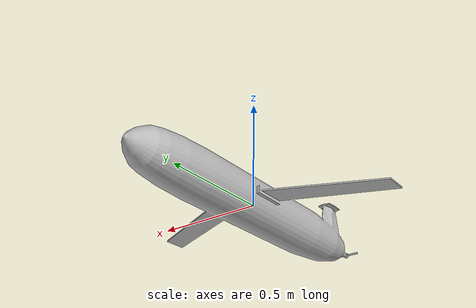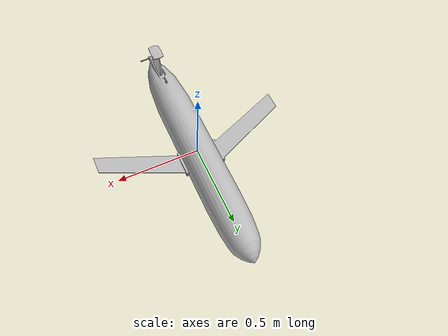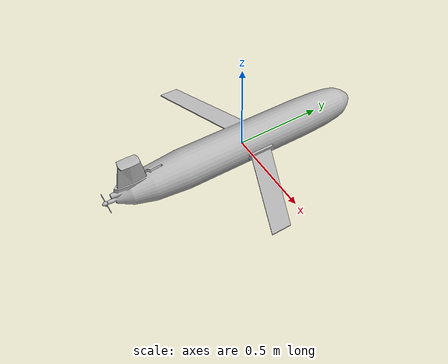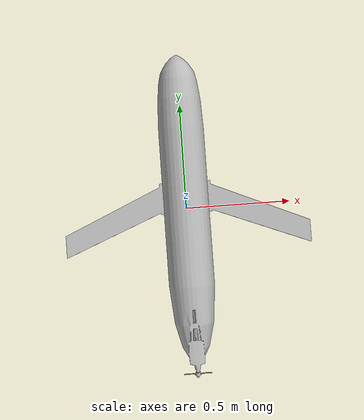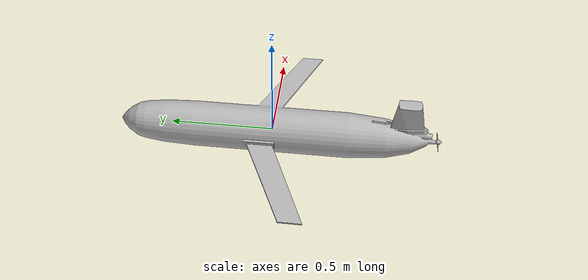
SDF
<?xml version="1.0"?>
<sdf version="1.7">
  <model name="glider_nautilus">

    <static>false</static>
    <link name="base_link">
      <inertial>
        <pose>0 0 -3 0 0 0</pose>
        <mass>44.25</mass>
        <inertia>
          <ixx>13.193856</ixx>
          <ixy>0</ixy>
          <ixz>0</ixz>
          <iyy>0.418962</iyy>
          <iyz>0</iyz>
          <izz>13.193856</izz>
        </inertia>
      </inertial>

      <visual name="base_link_visual">
        <pose>0 0 0 0 0 0</pose>
        <geometry>
          <mesh>
            <scale>0.5 0.5 0.5</scale>
            <uri>model://meshes/glider_nautilus/Nautilus-Glider.dae</uri>
          </mesh>
        </geometry>
      </visual>

      <collision name="base_link_collision">
        <pose>0 0 0 0 0 0</pose>
        <geometry>
          <box>
            <size>0.266 1 0.266</size>
          </box>
        </geometry>
      </collision>
    </link>

    <link name="propeller_link">
      <visual name="propeller_link_visual">
        <pose>0 0 0 0 0 0</pose>
        <geometry>
          <mesh>
            <scale>0.5 0.5 0.5</scale>
            <uri>model://meshes/glider_nautilus/Nautilus-Glider-Propeller.dae</uri>
          </mesh>
        </geometry>
      </visual>
      <inertial>
        <pose>0 0 0 0 0 0</pose>
        <inertia>
          <ixx>0.1</ixx>
          <ixy>0</ixy>
          <ixz>0</ixz>
          <iyy>0.1</iyy>
          <iyz>0</iyz>
          <izz>0.1</izz>
        </inertia>
        <mass>0.5</mass>
      </inertial>
    </link>

    <joint name="propeller_joint" type="revolute">
      <pose>0 0 0 0 0 0</pose>
      <parent>base_link</parent>
      <child>propeller_link</child>
      <axis>
        <xyz>0 1 0</xyz>
      </axis>
    </joint>

    <link name="bladder_link">
      <pose>0 0 0 0 0 0</pose>
    </link>

    <joint name="bladder_joint" type="revolute">
      <pose>0 0 0 0 0 0</pose>
      <parent>base_link</parent>
      <child>bladder_link</child>
      <axis>
        <xyz>0 0 1</xyz>
      </axis>
    </joint>

    <plugin
      filename="gz-sim-thruster-system"
      name="gz::sim::systems::Thruster">
      <namespace>glider_nautilus</namespace>
      <joint_name>bladder_joint</joint_name>
      <thrust_coefficient>0.004422</thrust_coefficient>
      <fluid_density>1025</fluid_density>
      <propeller_diameter>0.2</propeller_diameter>
    </plugin>

    <link name="weight_link">
      <inertial>
        <pose>0 0 0 0 0 0</pose>
        <mass>25</mass>
        <inertia>
          <ixx>0.2</ixx>
          <iyy>0.2</iyy>
          <izz>0.2</izz>
        </inertia>
      </inertial>
    </link>

    <joint name="weight_joint" type="prismatic">
      <parent>base_link</parent>
      <child>weight_link</child>
      <pose>0 0 0 0 0 0</pose>
      <axis>
        <xyz>0 1 0</xyz>
        <limit>
          <lower>-0.5</lower> <!-- Minimum position (in meters) -->
          <upper>0.5</upper>  <!-- Maximum position (in meters) -->
          <effort>10.0</effort> <!-- Maximum effort (optional, in newton-meters) -->
          <velocity>0.5</velocity> <!-- Maximum velocity (optional, in meters/second) -->
        </limit>
      </axis>
    </joint>

    <plugin
      filename="gz-sim-joint-controller-system"
      name="gz::sim::systems::JointController">
      <joint_name>weight_joint</joint_name>
    </plugin>

    <link name="imu_link">
      <inertial>
        <pose>0 0 0 0 0 0</pose>
        <mass>0.015</mass>
        <inertia>
          <ixx>0.00001</ixx>
          <ixy>0.0</ixy>
          <ixz>0.0</ixz>
          <iyy>0.00001</iyy>
          <iyz>0.0</iyz>
          <izz>0.00001</izz>
        </inertia>
      </inertial>
      <sensor name="imu_sensor" type="imu">
        <always_on>true</always_on>
        <update_rate>50.0</update_rate>
        <topic>/model/glider_nautilus/imu</topic>
      </sensor>
    </link>

    <joint name="imu_joint" type="fixed">
      <pose>0 0 0 0 0 0</pose>
      <parent>base_link</parent>
      <child>imu_link</child>
    </joint>

    <link name='battery_link'>
      <inertial>
        <pose>0 0 0 0 0 0</pose>
        <mass>2.9</mass>
        <inertia>
          <ixx>1e-05</ixx>
          <ixy>0</ixy>
          <ixz>0</ixz>
          <iyy>1e-05</iyy>
          <iyz>0</iyz>
          <izz>1e-05</izz>
        </inertia>
      </inertial>
      <battery name='battery'>
        <voltage>4.2</voltage>
      </battery>
    </link>

    <joint name='battery_joint' type='prismatic'>
      <pose>0 -0.318 0.044 0 0 0</pose> <!--CHECK AXIS DEFINITION-->
      <parent>base_link</parent>
      <child>battery_link</child>
      <axis>
        <xyz>0 1 0</xyz>
        <limit>
          <lower>-0.393</lower> <!-- Minimum position (in meters) -->
          <upper>-0.243</upper>  <!-- Maximum position (in meters) -->
          <effort>10.0</effort> <!-- Maximum effort (optional, in newton-meters) -->
          <velocity>0.5</velocity> <!-- Maximum velocity (optional, in meters/second) -->
        </limit>
      </axis>
    </joint>

<link name='acu_roll_link'>
      <inertial>
        <pose>0 0 0 0 0 0</pose>
        <mass>3.5</mass>
        <inertia>
          <ixx>1e-05</ixx>
          <ixy>0</ixy>
          <ixz>0</ixz>
          <iyy>1e-05</iyy>
          <iyz>0</iyz>
          <izz>1e-05</izz>
        </inertia>
      </inertial>
      <battery name='battery_acu_roll'>
        <voltage>4.2</voltage>
      </battery>
    </link>

    <joint name='acu_roll_joint' type='revolute'>
      <pose>0 -0.4 -0.07 0 0 0</pose> <!--CHECK AXIS DEFINITION-->
      <parent>base_link</parent>
      <child>acu_roll_link</child>
      <axis>
        <xyz>0 1 0</xyz>
        <limit>
          <lower>-0.5236</lower> <!-- Minimum position (in degrees) -->
          <upper>0.5236</upper>  <!-- Maximum position (in degrees) -->
          <effort>10.0</effort> <!-- Maximum effort (optional, in newton-meters) -->
          <velocity>0.5</velocity> <!-- Maximum velocity (optional, in meters/second) -->
        </limit>
      </axis>
    </joint>

    <plugin
      filename="gz-sim-joint-controller-system"
      name="gz::sim::systems::JointController">
      <joint_name>battery_joint</joint_name>
    </plugin>

    <plugin
      filename="gz-sim-joint-controller-system"
      name="gz::sim::systems::JointController">
      <joint_name>acu_roll_joint</joint_name>
    </plugin>

    <plugin
      filename="gz-sim-linearbatteryplugin-system"
      name="gz::sim::systems::LinearBatteryPlugin">
      <battery_name>battery</battery_name>
      <voltage>4.2</voltage>
      <open_circuit_voltage_constant_coef>3.7</open_circuit_voltage_constant_coef>
      <open_circuit_voltage_linear_coef>-3.1424</open_circuit_voltage_linear_coef>
      <initial_charge>4.32</initial_charge>
      <capacity>4.8</capacity>
      <resistance>0.002</resistance>
      <smooth_current_tau>1.9499</smooth_current_tau>
      <enable_recharge>false</enable_recharge>
      <power_load>10</power_load>
      <start_on_motion>true</start_on_motion>
    </plugin>

    <link name="navsat_link">
      <inertial>
        <pose>0 0 0 0 0 0</pose>
        <mass>0.001</mass>
        <inertia>
          <ixx>0.00001</ixx>
          <ixy>0.0</ixy>
          <ixz>0.0</ixz>
          <iyy>0.00001</iyy>
          <iyz>0.0</iyz>
          <izz>0.00001</izz>
        </inertia>
      </inertial>

      <sensor name="navsat_sensor" type="navsat">
        <always_on>true</always_on>
        <update_rate>30.0</update_rate>
        <topic>/model/glider_nautilus/navsat</topic>
      </sensor>
    </link>

    <joint name="navsat_joint" type="fixed">
      <pose>0 0 0 0 0 0</pose>
      <parent>base_link</parent>
      <child>navsat_link</child>
    </joint>

    <plugin
      filename="gz-sim-hydrodynamics-system"
      name="gz::sim::systems::Hydrodynamics">
      <link_name>base_link</link_name>
      <water_density>1025.0</water_density>
      <!-- Added mass -->
      <xDotU>0</xDotU>
      <yDotV>0</yDotV>
      <zDotW>0</zDotW>
      <kDotP>0</kDotP>
      <mDotQ>0</mDotQ>
      <nDotR>0</nDotR>

      <!-- Linear Drag Coefficients -->
      <!-- diagonal terms -->
      <xU>-8</xU>
      <yV>-162</yV>
      <zW>-108</zW>
      <kP>-13</kP>
      <mQ>-20</mQ>
      <nR>-32</nR>
      <!-- cross terms -->

      <!-- Quadratic Drag Coefficients -->
      <xUabsU>0</xUabsU>
      <yVabsV>0</yVabsV>
      <zWabsW>0</zWabsW>
      <kPabsP>0</kPabsP>
      <mQabsQ>0</mQabsQ>
      <nRabsR>0</nRabsR>
    </plugin>

    <plugin
      filename="gz-sim-imu-system"
      name="gz::sim::systems::Imu">
    </plugin>

    <plugin
      filename="gz-sim-navsat-system"
      name="gz::sim::systems::NavSat">
    </plugin>

    <plugin
      filename="gz-sim-odometry-publisher-system"
      name="gz::sim::systems::OdometryPublisher">
      <odom_frame>map</odom_frame>
      <robot_base_frame>base_link</robot_base_frame>
      <dimensions>3</dimensions>
      <odom_publish_frequency>100</odom_publish_frequency>
    </plugin>

    <plugin
      filename="gz-sim-joint-state-publisher-system"
      name="gz::sim::systems::JointStatePublisher">
    </plugin>

    <!-- Sea Pressure Sensor Plugin -->
    <plugin
      filename="sea_pressure_sensor"
      name=" dave_gz_sensor_plugins::SubseaPressureSensorPlugin">
      <namespace>glider_nautilus</namespace>
      <topic>sea_pressure</topic>
      <update_rate>10</update_rate>
      <noise_sigma>3.0</noise_sigma>
      <estimate_depth_on>false</estimate_depth_on>
      <standard_pressure>101.325</standard_pressure>
      <kPa_per_meter>9.80638</kPa_per_meter>
    </plugin>

  </model>
</sdf>
